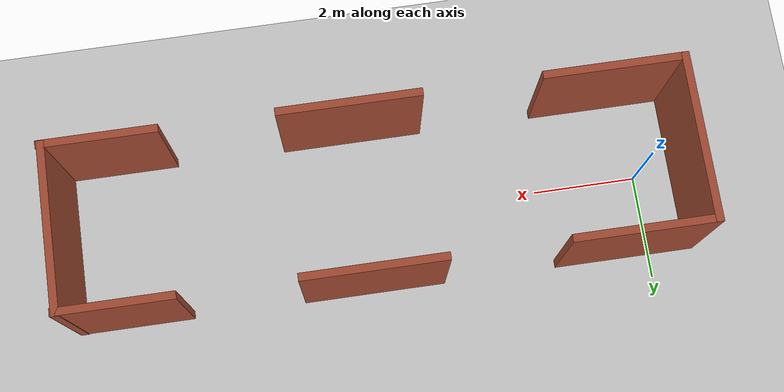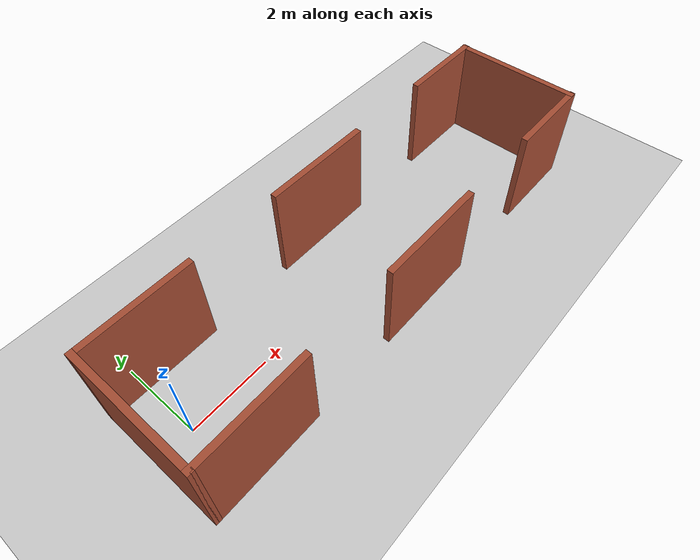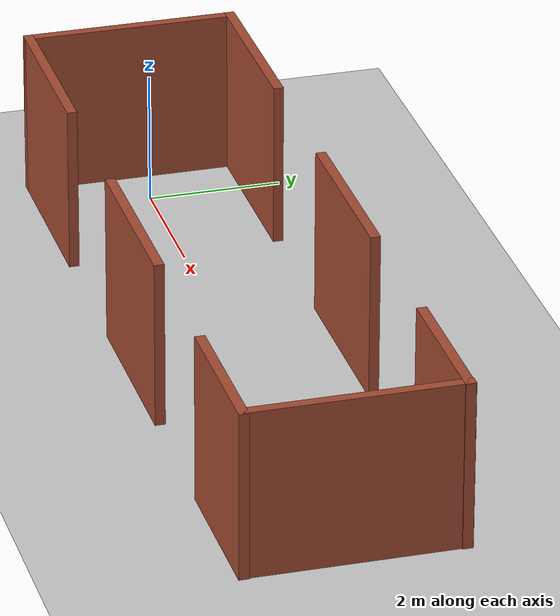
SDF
<sdf version="1.7">
 <world name="default">
  <light name="sun" type="directional">
   <pose>0 0 10 0 -0 0</pose>
   <diffuse>0.8 0.8 0.8 1</diffuse>
   <specular>0.2 0.2 0.2 1</specular>
   <attenuation>
    <range>1000</range>
    <constant>0.9</constant>
    <linear>0.01</linear>
    <quadratic>0.001</quadratic>
   </attenuation>
   <direction>-0.5 0.1 -0.9</direction>
   <spot><inner_angle>0</inner_angle><outer_angle>0</outer_angle><falloff>0</falloff></spot>
  </light>
  <model name="ground_plane">
   <static>1</static>
   <link name="link">
    <collision name="collision">
     <geometry><plane><normal>0 0 1</normal><size>100 100</size></plane></geometry>
     <surface>
      <contact><collide_bitmask>65535</collide_bitmask></contact>
      <friction><ode><mu>100</mu><mu2>50</mu2></ode></friction>
     </surface>
    </collision>
    <visual name="visual">
     <cast_shadows>0</cast_shadows>
     <geometry><plane><normal>0 0 1</normal><size>100 100</size></plane></geometry>
     <material>
      <script><uri>file://media/materials/scripts/gazebo.material</uri><name>Gazebo/Grey</name></script>
     </material>
    </visual>
   </link>
  </model>
  <gravity>0 0 -9.8</gravity>
  <magnetic_field>6e-06 2.3e-05 -4.2e-05</magnetic_field>
  <atmosphere type="adiabatic"/>
  <physics type="ode">
   <max_step_size>0.001</max_step_size>
   <real_time_factor>1</real_time_factor>
   <real_time_update_rate>1000</real_time_update_rate>
  </physics>
  <scene><ambient>0.4 0.4 0.4 1</ambient><background>0.7 0.7 0.7 1</background><shadows>1</shadows></scene>
  <spherical_coordinates>
   <surface_model>EARTH_WGS84</surface_model>
   <latitude_deg>0</latitude_deg>
   <longitude_deg>0</longitude_deg>
   <elevation>0</elevation>
   <heading_deg>0</heading_deg>
  </spherical_coordinates>
  <model name="Untitled2">
   <pose>5.16801 0.307703 0 0 -0 0</pose>
   <link name="Wall_0">
    <collision name="Wall_0_Collision">
     <geometry><box><size>2.75 0.15 2.5</size></box></geometry>
     <pose>0 0 1.25 0 -0 0</pose>
    </collision>
    <visual name="Wall_0_Visual">
     <pose>0 0 1.25 0 -0 0</pose>
     <geometry><box><size>2.75 0.15 2.5</size></box></geometry>
     <material>
      <script><uri>file://media/materials/scripts/gazebo.material</uri><name>Gazebo/Bricks</name></script>
      <ambient>1 1 1 1</ambient>
     </material>
     <meta><layer>0</layer></meta>
    </visual>
    <pose>-4.685 -1.9375 0 0 -0 0</pose>
   </link>
   <link name="Wall_11">
    <collision name="Wall_11_Collision">
     <geometry><box><size>2.25 0.15 2.5</size></box></geometry>
     <pose>0 0 1.25 0 -0 0</pose>
    </collision>
    <visual name="Wall_11_Visual">
     <pose>0 0 1.25 0 -0 0</pose>
     <geometry><box><size>2.25 0.15 2.5</size></box></geometry>
     <material>
      <script><uri>file://media/materials/scripts/gazebo.material</uri><name>Gazebo/Bricks</name></script>
      <ambient>1 1 1 1</ambient>
     </material>
     <meta><layer>0</layer></meta>
    </visual>
    <pose>4.935 -1.9375 0 0 -0 0</pose>
   </link>
   <link name="Wall_12">
    <collision name="Wall_12_Collision">
     <geometry><box><size>3.25 0.15 2.5</size></box></geometry>
     <pose>0 0 1.25 0 -0 0</pose>
    </collision>
    <visual name="Wall_12_Visual">
     <pose>0 0 1.25 0 -0 0</pose>
     <geometry><box><size>3.25 0.15 2.5</size></box></geometry>
     <material>
      <script><uri>file://media/materials/scripts/gazebo.material</uri><name>Gazebo/Bricks</name></script>
      <ambient>1 1 1 1</ambient>
     </material>
     <meta><layer>0</layer></meta>
    </visual>
    <pose>5.965 -0.3775 0 0 -0 1.5708</pose>
   </link>
   <link name="Wall_13">
    <collision name="Wall_13_Collision">
     <geometry><box><size>2.25 0.15 2.5</size></box></geometry>
     <pose>0 0 1.25 0 -0 0</pose>
    </collision>
    <visual name="Wall_13_Visual">
     <pose>0 0 1.25 0 -0 0</pose>
     <geometry><box><size>2.25 0.15 2.5</size></box></geometry>
     <material>
      <script><uri>file://media/materials/scripts/gazebo.material</uri><name>Gazebo/Bricks</name></script>
      <ambient>1 1 1 1</ambient>
     </material>
     <meta><layer>0</layer></meta>
    </visual>
    <pose>4.935 1.1625 0 0 -0 3.14159</pose>
   </link>
   <link name="Wall_2">
    <collision name="Wall_2_Collision">
     <geometry><box><size>2.75 0.15 2.5</size></box></geometry>
     <pose>0 0 1.25 0 -0 0</pose>
    </collision>
    <visual name="Wall_2_Visual">
     <pose>0 0 1.25 0 -0 0</pose>
     <geometry><box><size>2.75 0.15 2.5</size></box></geometry>
     <material>
      <script><uri>file://media/materials/scripts/gazebo.material</uri><name>Gazebo/Bricks</name></script>
      <ambient>1 1 1 1</ambient>
     </material>
     <meta><layer>0</layer></meta>
    </visual>
    <pose>0.295 -1.9375 0 0 -0 0</pose>
   </link>
   <link name="Wall_6">
    <collision name="Wall_6_Collision">
     <geometry><box><size>2.75 0.15 2.5</size></box></geometry>
     <pose>0 0 1.25 0 -0 0</pose>
    </collision>
    <visual name="Wall_6_Visual">
     <pose>0 0 1.25 0 -0 0</pose>
     <geometry><box><size>2.75 0.15 2.5</size></box></geometry>
     <material>
      <script><uri>file://media/materials/scripts/gazebo.material</uri><name>Gazebo/Bricks</name></script>
      <ambient>1 1 1 1</ambient>
     </material>
     <meta><layer>0</layer></meta>
    </visual>
    <pose>0.265 1.1625 0 0 -0 3.14159</pose>
   </link>
   <link name="Wall_8">
    <collision name="Wall_8_Collision">
     <geometry><box><size>2.75 0.15 2.5</size></box></geometry>
     <pose>0 0 1.25 0 -0 0</pose>
    </collision>
    <visual name="Wall_8_Visual">
     <pose>0 0 1.25 0 -0 0</pose>
     <geometry><box><size>2.75 0.15 2.5</size></box></geometry>
     <material>
      <script><uri>file://media/materials/scripts/gazebo.material</uri><name>Gazebo/Bricks</name></script>
      <ambient>1 1 1 1</ambient>
     </material>
     <meta><layer>0</layer></meta>
    </visual>
    <pose>-4.685 1.1625 0 0 -0 3.14159</pose>
   </link>
   <link name="Wall_9">
    <collision name="Wall_9_Collision">
     <geometry><box><size>3.25 0.15 2.5</size></box></geometry>
     <pose>0 0 1.25 0 -0 0</pose>
    </collision>
    <visual name="Wall_9_Visual">
     <pose>0 0 1.25 0 -0 0</pose>
     <geometry><box><size>3.25 0.15 2.5</size></box></geometry>
     <material>
      <script><uri>file://media/materials/scripts/gazebo.material</uri><name>Gazebo/Bricks</name></script>
      <ambient>1 1 1 1</ambient>
     </material>
     <meta><layer>0</layer></meta>
    </visual>
    <pose>-5.985 -0.3875 0 0 -0 -1.5708</pose>
   </link>
   <static>1</static>
  </model>
 </world>
</sdf>
